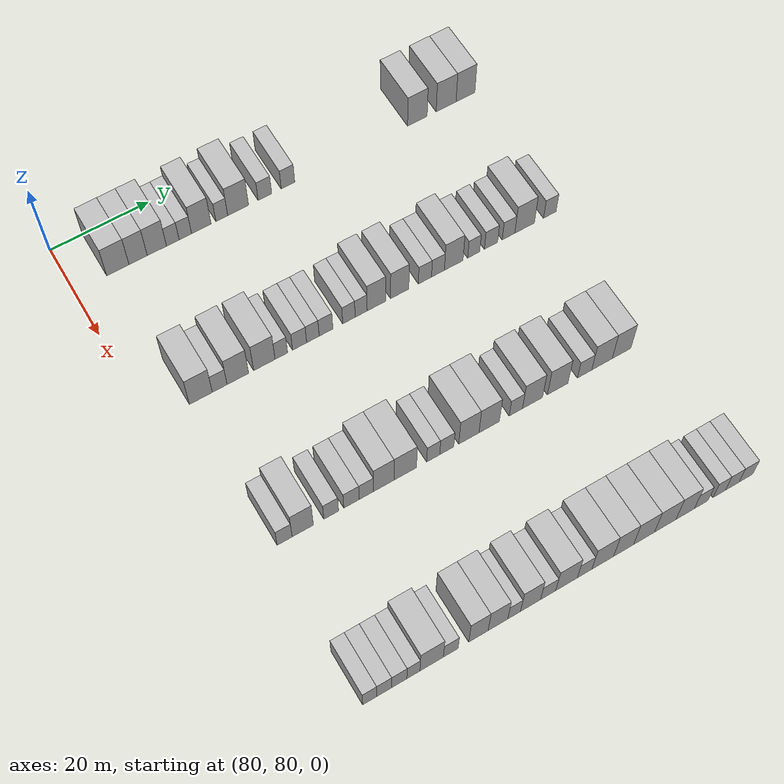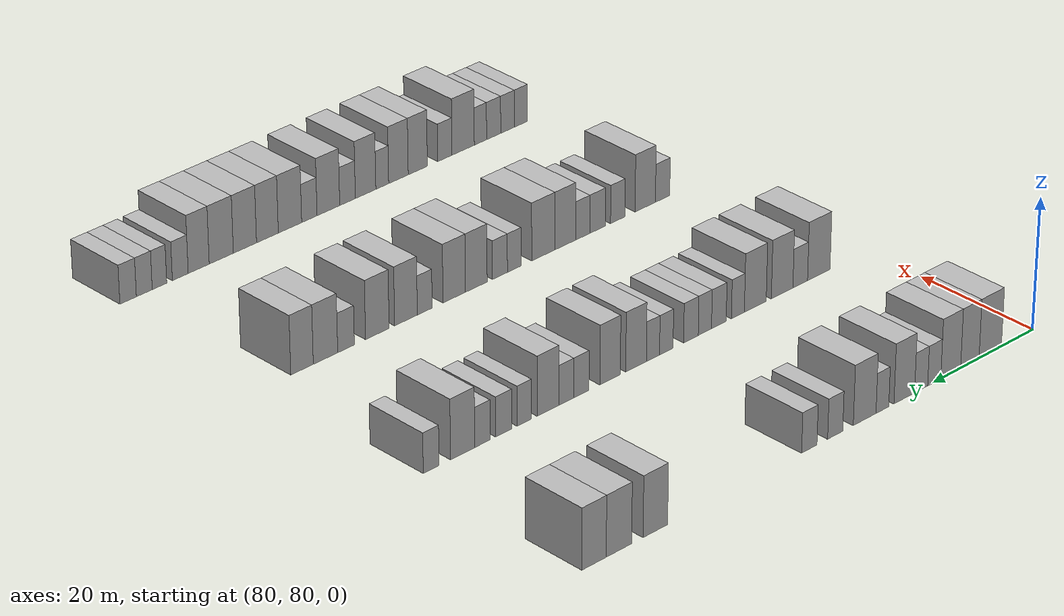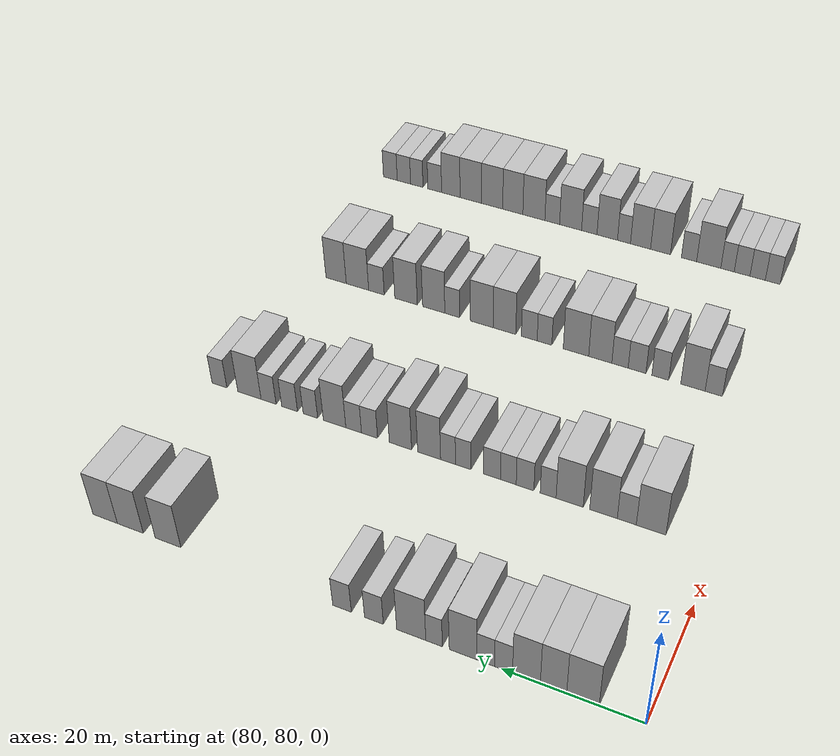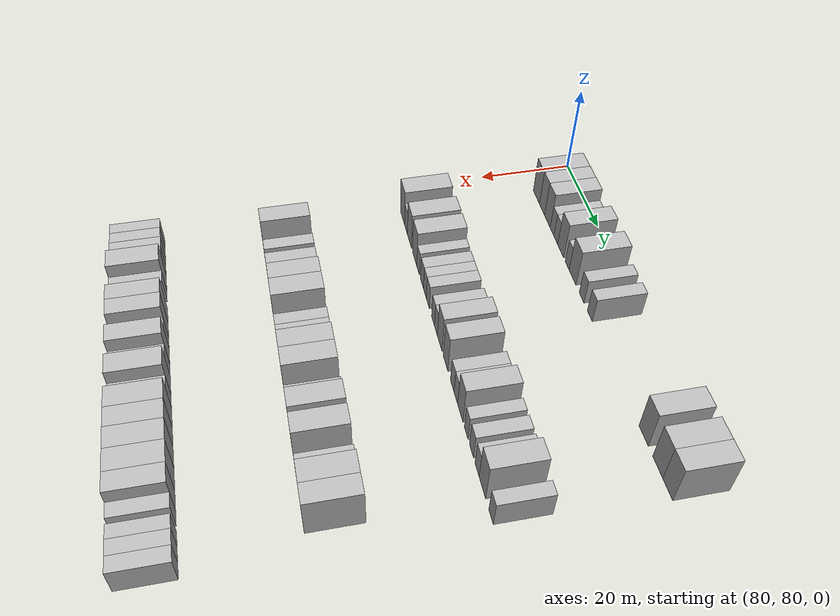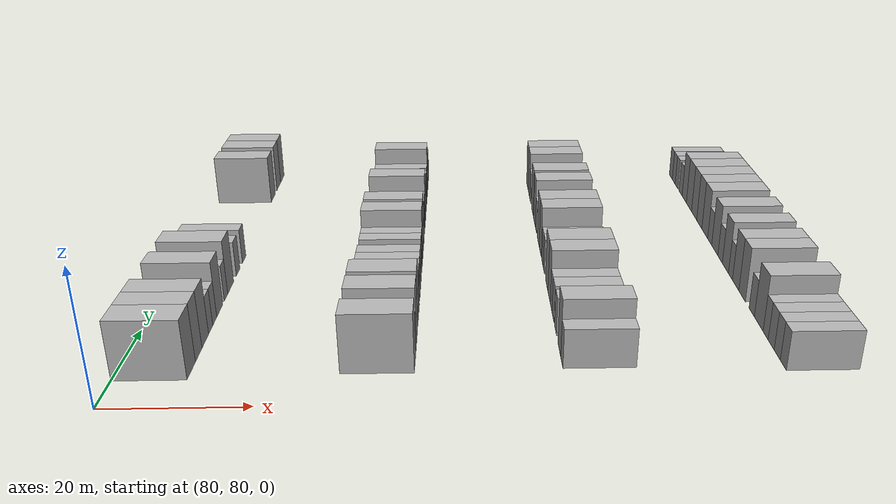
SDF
<sdf version="1.6">
 <world name="default">
  <model name="building_593">
   <static>1</static>
   <pose>85.0000 88.6629 0 0.000000 0.000000 0.000000</pose>
   <link name="link">
    <pose>0 0 4.50 0 0 0</pose>
    <collision name="collision"><geometry><box><size>10.0000 4.4627 9.0000</size></box></geometry></collision>
    <visual name="visual">
     <cast_shadows>0</cast_shadows>
     <geometry><box><size>10.0000 4.4627 9.0000</size></box></geometry>
     <material>
      <script>
       <uri>model://HANNAS_wall/materials/scripts</uri>
       <uri>model://HANNAS_wall/materials/textures</uri>
       <name>vrc/HANNAS_wall</name>
      </script>
     </material>
    </visual>
   </link>
  </model>
  <model name="building_594">
   <static>1</static>
   <pose>85.0000 92.7208 0 0.000000 0.000000 0.000000</pose>
   <link name="link">
    <pose>0 0 4.50 0 0 0</pose>
    <collision name="collision"><geometry><box><size>10.0000 3.6532 9.0000</size></box></geometry></collision>
    <visual name="visual">
     <cast_shadows>0</cast_shadows>
     <geometry><box><size>10.0000 3.6532 9.0000</size></box></geometry>
     <material>
      <script>
       <uri>model://HANNAS_wall/materials/scripts</uri>
       <uri>model://HANNAS_wall/materials/textures</uri>
       <name>vrc/HANNAS_wall</name>
      </script>
     </material>
    </visual>
   </link>
  </model>
  <model name="building_595">
   <static>1</static>
   <pose>85.0000 96.4983 0 0.000000 0.000000 0.000000</pose>
   <link name="link">
    <pose>0 0 4.50 0 0 0</pose>
    <collision name="collision"><geometry><box><size>10.0000 3.9016 9.0000</size></box></geometry></collision>
    <visual name="visual">
     <cast_shadows>0</cast_shadows>
     <geometry><box><size>10.0000 3.9016 9.0000</size></box></geometry>
     <material>
      <script>
       <uri>model://HANNAS_wall/materials/scripts</uri>
       <uri>model://HANNAS_wall/materials/textures</uri>
       <name>vrc/HANNAS_wall</name>
      </script>
     </material>
    </visual>
   </link>
  </model>
  <model name="building_596">
   <static>1</static>
   <pose>85.0000 99.7285 0 0.000000 0.000000 0.000000</pose>
   <link name="link">
    <pose>0 0 3.00 0 0 0</pose>
    <collision name="collision"><geometry><box><size>10.0000 2.5588 6.0000</size></box></geometry></collision>
    <visual name="visual">
     <cast_shadows>0</cast_shadows>
     <geometry><box><size>10.0000 2.5588 6.0000</size></box></geometry>
     <material>
      <script>
       <uri>model://HANNAS_wall/materials/scripts</uri>
       <uri>model://HANNAS_wall/materials/textures</uri>
       <name>vrc/HANNAS_wall</name>
      </script>
     </material>
    </visual>
   </link>
  </model>
  <model name="building_597">
   <static>1</static>
   <pose>85.0000 102.2807 0 0.000000 0.000000 0.000000</pose>
   <link name="link">
    <pose>0 0 3.00 0 0 0</pose>
    <collision name="collision"><geometry><box><size>10.0000 2.5457 6.0000</size></box></geometry></collision>
    <visual name="visual">
     <cast_shadows>0</cast_shadows>
     <geometry><box><size>10.0000 2.5457 6.0000</size></box></geometry>
     <material>
      <script>
       <uri>model://HANNAS_wall/materials/scripts</uri>
       <uri>model://HANNAS_wall/materials/textures</uri>
       <name>vrc/HANNAS_wall</name>
      </script>
     </material>
    </visual>
   </link>
  </model>
  <model name="building_598">
   <static>1</static>
   <pose>85.0000 105.5483 0 0.000000 0.000000 0.000000</pose>
   <link name="link">
    <pose>0 0 4.50 0 0 0</pose>
    <collision name="collision"><geometry><box><size>10.0000 3.9896 9.0000</size></box></geometry></collision>
    <visual name="visual">
     <cast_shadows>0</cast_shadows>
     <geometry><box><size>10.0000 3.9896 9.0000</size></box></geometry>
     <material>
      <script>
       <uri>model://HANNAS_wall/materials/scripts</uri>
       <uri>model://HANNAS_wall/materials/textures</uri>
       <name>vrc/HANNAS_wall</name>
      </script>
     </material>
    </visual>
   </link>
  </model>
  <model name="building_599">
   <static>1</static>
   <pose>85.0000 109.7626 0 0.000000 0.000000 0.000000</pose>
   <link name="link">
    <pose>0 0 3.00 0 0 0</pose>
    <collision name="collision"><geometry><box><size>10.0000 2.4389 6.0000</size></box></geometry></collision>
    <visual name="visual">
     <cast_shadows>0</cast_shadows>
     <geometry><box><size>10.0000 2.4389 6.0000</size></box></geometry>
     <material>
      <script>
       <uri>model://HANNAS_wall/materials/scripts</uri>
       <uri>model://HANNAS_wall/materials/textures</uri>
       <name>vrc/HANNAS_wall</name>
      </script>
     </material>
    </visual>
   </link>
  </model>
  <model name="building_600">
   <static>1</static>
   <pose>85.0000 113.1440 0 0.000000 0.000000 0.000000</pose>
   <link name="link">
    <pose>0 0 4.50 0 0 0</pose>
    <collision name="collision"><geometry><box><size>10.0000 4.3240 9.0000</size></box></geometry></collision>
    <visual name="visual">
     <cast_shadows>0</cast_shadows>
     <geometry><box><size>10.0000 4.3240 9.0000</size></box></geometry>
     <material>
      <script>
       <uri>model://HANNAS_wall/materials/scripts</uri>
       <uri>model://HANNAS_wall/materials/textures</uri>
       <name>vrc/HANNAS_wall</name>
      </script>
     </material>
    </visual>
   </link>
  </model>
  <model name="building_601">
   <static>1</static>
   <pose>85.0000 118.7270 0 0.000000 0.000000 0.000000</pose>
   <link name="link">
    <pose>0 0 3.00 0 0 0</pose>
    <collision name="collision"><geometry><box><size>10.0000 2.8420 6.0000</size></box></geometry></collision>
    <visual name="visual">
     <cast_shadows>0</cast_shadows>
     <geometry><box><size>10.0000 2.8420 6.0000</size></box></geometry>
     <material>
      <script>
       <uri>model://HANNAS_wall/materials/scripts</uri>
       <uri>model://HANNAS_wall/materials/textures</uri>
       <name>vrc/HANNAS_wall</name>
      </script>
     </material>
    </visual>
   </link>
  </model>
  <model name="building_602">
   <static>1</static>
   <pose>85.0000 123.5786 0 0.000000 0.000000 0.000000</pose>
   <link name="link">
    <pose>0 0 3.00 0 0 0</pose>
    <collision name="collision"><geometry><box><size>10.0000 2.8612 6.0000</size></box></geometry></collision>
    <visual name="visual">
     <cast_shadows>0</cast_shadows>
     <geometry><box><size>10.0000 2.8612 6.0000</size></box></geometry>
     <material>
      <script>
       <uri>model://HANNAS_wall/materials/scripts</uri>
       <uri>model://HANNAS_wall/materials/textures</uri>
       <name>vrc/HANNAS_wall</name>
      </script>
     </material>
    </visual>
   </link>
  </model>
  <model name="building_603">
   <static>1</static>
   <pose>85.0000 151.4827 0 0.000000 0.000000 0.000000</pose>
   <link name="link">
    <pose>0 0 4.50 0 0 0</pose>
    <collision name="collision"><geometry><box><size>10.0000 4.3156 9.0000</size></box></geometry></collision>
    <visual name="visual">
     <cast_shadows>0</cast_shadows>
     <geometry><box><size>10.0000 4.3156 9.0000</size></box></geometry>
     <material>
      <script>
       <uri>model://HANNAS_wall/materials/scripts</uri>
       <uri>model://HANNAS_wall/materials/textures</uri>
       <name>vrc/HANNAS_wall</name>
      </script>
     </material>
    </visual>
   </link>
  </model>
  <model name="building_604">
   <static>1</static>
   <pose>85.0000 157.8528 0 0.000000 0.000000 0.000000</pose>
   <link name="link">
    <pose>0 0 4.50 0 0 0</pose>
    <collision name="collision"><geometry><box><size>10.0000 4.4247 9.0000</size></box></geometry></collision>
    <visual name="visual">
     <cast_shadows>0</cast_shadows>
     <geometry><box><size>10.0000 4.4247 9.0000</size></box></geometry>
     <material>
      <script>
       <uri>model://HANNAS_wall/materials/scripts</uri>
       <uri>model://HANNAS_wall/materials/textures</uri>
       <name>vrc/HANNAS_wall</name>
      </script>
     </material>
    </visual>
   </link>
  </model>
  <model name="building_605">
   <static>1</static>
   <pose>85.0000 162.1666 0 0.000000 0.000000 0.000000</pose>
   <link name="link">
    <pose>0 0 4.50 0 0 0</pose>
    <collision name="collision"><geometry><box><size>10.0000 4.2029 9.0000</size></box></geometry></collision>
    <visual name="visual">
     <cast_shadows>0</cast_shadows>
     <geometry><box><size>10.0000 4.2029 9.0000</size></box></geometry>
     <material>
      <script>
       <uri>model://HANNAS_wall/materials/scripts</uri>
       <uri>model://HANNAS_wall/materials/textures</uri>
       <name>vrc/HANNAS_wall</name>
      </script>
     </material>
    </visual>
   </link>
  </model>
  <model name="building_805">
   <static>1</static>
   <pose>115.0000 89.6405 0 0.000000 0.000000 0.000000</pose>
   <link name="link">
    <pose>0 0 4.50 0 0 0</pose>
    <collision name="collision"><geometry><box><size>10.0000 4.4623 9.0000</size></box></geometry></collision>
    <visual name="visual">
     <cast_shadows>0</cast_shadows>
     <geometry><box><size>10.0000 4.4623 9.0000</size></box></geometry>
     <material>
      <script>
       <uri>model://HANNAS_wall/materials/scripts</uri>
       <uri>model://HANNAS_wall/materials/textures</uri>
       <name>vrc/HANNAS_wall</name>
      </script>
     </material>
    </visual>
   </link>
  </model>
  <model name="building_806">
   <static>1</static>
   <pose>115.0000 93.3172 0 0.000000 0.000000 0.000000</pose>
   <link name="link">
    <pose>0 0 3.00 0 0 0</pose>
    <collision name="collision"><geometry><box><size>10.0000 2.8911 6.0000</size></box></geometry></collision>
    <visual name="visual">
     <cast_shadows>0</cast_shadows>
     <geometry><box><size>10.0000 2.8911 6.0000</size></box></geometry>
     <material>
      <script>
       <uri>model://HANNAS_wall/materials/scripts</uri>
       <uri>model://HANNAS_wall/materials/textures</uri>
       <name>vrc/HANNAS_wall</name>
      </script>
     </material>
    </visual>
   </link>
  </model>
  <model name="building_807">
   <static>1</static>
   <pose>115.0000 96.8798 0 0.000000 0.000000 0.000000</pose>
   <link name="link">
    <pose>0 0 4.50 0 0 0</pose>
    <collision name="collision"><geometry><box><size>10.0000 4.2341 9.0000</size></box></geometry></collision>
    <visual name="visual">
     <cast_shadows>0</cast_shadows>
     <geometry><box><size>10.0000 4.2341 9.0000</size></box></geometry>
     <material>
      <script>
       <uri>model://HANNAS_wall/materials/scripts</uri>
       <uri>model://HANNAS_wall/materials/textures</uri>
       <name>vrc/HANNAS_wall</name>
      </script>
     </material>
    </visual>
   </link>
  </model>
  <model name="building_808">
   <static>1</static>
   <pose>115.0000 102.1178 0 0.000000 0.000000 0.000000</pose>
   <link name="link">
    <pose>0 0 4.50 0 0 0</pose>
    <collision name="collision"><geometry><box><size>10.0000 4.2420 9.0000</size></box></geometry></collision>
    <visual name="visual">
     <cast_shadows>0</cast_shadows>
     <geometry><box><size>10.0000 4.2420 9.0000</size></box></geometry>
     <material>
      <script>
       <uri>model://HANNAS_wall/materials/scripts</uri>
       <uri>model://HANNAS_wall/materials/textures</uri>
       <name>vrc/HANNAS_wall</name>
      </script>
     </material>
    </visual>
   </link>
  </model>
  <model name="building_809">
   <static>1</static>
   <pose>115.0000 105.4895 0 0.000000 0.000000 0.000000</pose>
   <link name="link">
    <pose>0 0 3.00 0 0 0</pose>
    <collision name="collision"><geometry><box><size>10.0000 2.5015 6.0000</size></box></geometry></collision>
    <visual name="visual">
     <cast_shadows>0</cast_shadows>
     <geometry><box><size>10.0000 2.5015 6.0000</size></box></geometry>
     <material>
      <script>
       <uri>model://HANNAS_wall/materials/scripts</uri>
       <uri>model://HANNAS_wall/materials/textures</uri>
       <name>vrc/HANNAS_wall</name>
      </script>
     </material>
    </visual>
   </link>
  </model>
  <model name="building_810">
   <static>1</static>
   <pose>115.0000 109.1490 0 0.000000 0.000000 0.000000</pose>
   <link name="link">
    <pose>0 0 3.00 0 0 0</pose>
    <collision name="collision"><geometry><box><size>10.0000 2.8173 6.0000</size></box></geometry></collision>
    <visual name="visual">
     <cast_shadows>0</cast_shadows>
     <geometry><box><size>10.0000 2.8173 6.0000</size></box></geometry>
     <material>
      <script>
       <uri>model://HANNAS_wall/materials/scripts</uri>
       <uri>model://HANNAS_wall/materials/textures</uri>
       <name>vrc/HANNAS_wall</name>
      </script>
     </material>
    </visual>
   </link>
  </model>
  <model name="building_811">
   <static>1</static>
   <pose>115.0000 111.8205 0 0.000000 0.000000 0.000000</pose>
   <link name="link">
    <pose>0 0 3.00 0 0 0</pose>
    <collision name="collision"><geometry><box><size>10.0000 2.5257 6.0000</size></box></geometry></collision>
    <visual name="visual">
     <cast_shadows>0</cast_shadows>
     <geometry><box><size>10.0000 2.5257 6.0000</size></box></geometry>
     <material>
      <script>
       <uri>model://HANNAS_wall/materials/scripts</uri>
       <uri>model://HANNAS_wall/materials/textures</uri>
       <name>vrc/HANNAS_wall</name>
      </script>
     </material>
    </visual>
   </link>
  </model>
  <model name="building_812">
   <static>1</static>
   <pose>115.0000 114.4711 0 0.000000 0.000000 0.000000</pose>
   <link name="link">
    <pose>0 0 3.00 0 0 0</pose>
    <collision name="collision"><geometry><box><size>10.0000 2.7755 6.0000</size></box></geometry></collision>
    <visual name="visual">
     <cast_shadows>0</cast_shadows>
     <geometry><box><size>10.0000 2.7755 6.0000</size></box></geometry>
     <material>
      <script>
       <uri>model://HANNAS_wall/materials/scripts</uri>
       <uri>model://HANNAS_wall/materials/textures</uri>
       <name>vrc/HANNAS_wall</name>
      </script>
     </material>
    </visual>
   </link>
  </model>
  <model name="building_813">
   <static>1</static>
   <pose>115.0000 119.1285 0 0.000000 0.000000 0.000000</pose>
   <link name="link">
    <pose>0 0 3.00 0 0 0</pose>
    <collision name="collision"><geometry><box><size>10.0000 2.5393 6.0000</size></box></geometry></collision>
    <visual name="visual">
     <cast_shadows>0</cast_shadows>
     <geometry><box><size>10.0000 2.5393 6.0000</size></box></geometry>
     <material>
      <script>
       <uri>model://HANNAS_wall/materials/scripts</uri>
       <uri>model://HANNAS_wall/materials/textures</uri>
       <name>vrc/HANNAS_wall</name>
      </script>
     </material>
    </visual>
   </link>
  </model>
  <model name="building_814">
   <static>1</static>
   <pose>115.0000 121.6326 0 0.000000 0.000000 0.000000</pose>
   <link name="link">
    <pose>0 0 3.00 0 0 0</pose>
    <collision name="collision"><geometry><box><size>10.0000 2.4688 6.0000</size></box></geometry></collision>
    <visual name="visual">
     <cast_shadows>0</cast_shadows>
     <geometry><box><size>10.0000 2.4688 6.0000</size></box></geometry>
     <material>
      <script>
       <uri>model://HANNAS_wall/materials/scripts</uri>
       <uri>model://HANNAS_wall/materials/textures</uri>
       <name>vrc/HANNAS_wall</name>
      </script>
     </material>
    </visual>
   </link>
  </model>
  <model name="building_815">
   <static>1</static>
   <pose>115.0000 124.7837 0 0.000000 0.000000 0.000000</pose>
   <link name="link">
    <pose>0 0 4.50 0 0 0</pose>
    <collision name="collision"><geometry><box><size>10.0000 3.8334 9.0000</size></box></geometry></collision>
    <visual name="visual">
     <cast_shadows>0</cast_shadows>
     <geometry><box><size>10.0000 3.8334 9.0000</size></box></geometry>
     <material>
      <script>
       <uri>model://HANNAS_wall/materials/scripts</uri>
       <uri>model://HANNAS_wall/materials/textures</uri>
       <name>vrc/HANNAS_wall</name>
      </script>
     </material>
    </visual>
   </link>
  </model>
  <model name="building_816">
   <static>1</static>
   <pose>115.0000 129.5883 0 0.000000 0.000000 0.000000</pose>
   <link name="link">
    <pose>0 0 4.50 0 0 0</pose>
    <collision name="collision"><geometry><box><size>10.0000 3.7759 9.0000</size></box></geometry></collision>
    <visual name="visual">
     <cast_shadows>0</cast_shadows>
     <geometry><box><size>10.0000 3.7759 9.0000</size></box></geometry>
     <material>
      <script>
       <uri>model://HANNAS_wall/materials/scripts</uri>
       <uri>model://HANNAS_wall/materials/textures</uri>
       <name>vrc/HANNAS_wall</name>
      </script>
     </material>
    </visual>
   </link>
  </model>
  <model name="building_817">
   <static>1</static>
   <pose>115.0000 134.8515 0 0.000000 0.000000 0.000000</pose>
   <link name="link">
    <pose>0 0 3.00 0 0 0</pose>
    <collision name="collision"><geometry><box><size>10.0000 2.7505 6.0000</size></box></geometry></collision>
    <visual name="visual">
     <cast_shadows>0</cast_shadows>
     <geometry><box><size>10.0000 2.7505 6.0000</size></box></geometry>
     <material>
      <script>
       <uri>model://HANNAS_wall/materials/scripts</uri>
       <uri>model://HANNAS_wall/materials/textures</uri>
       <name>vrc/HANNAS_wall</name>
      </script>
     </material>
    </visual>
   </link>
  </model>
  <model name="building_818">
   <static>1</static>
   <pose>115.0000 137.5805 0 0.000000 0.000000 0.000000</pose>
   <link name="link">
    <pose>0 0 3.00 0 0 0</pose>
    <collision name="collision"><geometry><box><size>10.0000 2.7075 6.0000</size></box></geometry></collision>
    <visual name="visual">
     <cast_shadows>0</cast_shadows>
     <geometry><box><size>10.0000 2.7075 6.0000</size></box></geometry>
     <material>
      <script>
       <uri>model://HANNAS_wall/materials/scripts</uri>
       <uri>model://HANNAS_wall/materials/textures</uri>
       <name>vrc/HANNAS_wall</name>
      </script>
     </material>
    </visual>
   </link>
  </model>
  <model name="building_819">
   <static>1</static>
   <pose>115.0000 140.8945 0 0.000000 0.000000 0.000000</pose>
   <link name="link">
    <pose>0 0 4.50 0 0 0</pose>
    <collision name="collision"><geometry><box><size>10.0000 3.9205 9.0000</size></box></geometry></collision>
    <visual name="visual">
     <cast_shadows>0</cast_shadows>
     <geometry><box><size>10.0000 3.9205 9.0000</size></box></geometry>
     <material>
      <script>
       <uri>model://HANNAS_wall/materials/scripts</uri>
       <uri>model://HANNAS_wall/materials/textures</uri>
       <name>vrc/HANNAS_wall</name>
      </script>
     </material>
    </visual>
   </link>
  </model>
  <model name="building_820">
   <static>1</static>
   <pose>115.0000 145.1359 0 0.000000 0.000000 0.000000</pose>
   <link name="link">
    <pose>0 0 3.00 0 0 0</pose>
    <collision name="collision"><geometry><box><size>10.0000 2.5624 6.0000</size></box></geometry></collision>
    <visual name="visual">
     <cast_shadows>0</cast_shadows>
     <geometry><box><size>10.0000 2.5624 6.0000</size></box></geometry>
     <material>
      <script>
       <uri>model://HANNAS_wall/materials/scripts</uri>
       <uri>model://HANNAS_wall/materials/textures</uri>
       <name>vrc/HANNAS_wall</name>
      </script>
     </material>
    </visual>
   </link>
  </model>
  <model name="building_821">
   <static>1</static>
   <pose>115.0000 148.8288 0 0.000000 0.000000 0.000000</pose>
   <link name="link">
    <pose>0 0 3.00 0 0 0</pose>
    <collision name="collision"><geometry><box><size>10.0000 2.8233 6.0000</size></box></geometry></collision>
    <visual name="visual">
     <cast_shadows>0</cast_shadows>
     <geometry><box><size>10.0000 2.8233 6.0000</size></box></geometry>
     <material>
      <script>
       <uri>model://HANNAS_wall/materials/scripts</uri>
       <uri>model://HANNAS_wall/materials/textures</uri>
       <name>vrc/HANNAS_wall</name>
      </script>
     </material>
    </visual>
   </link>
  </model>
  <model name="building_822">
   <static>1</static>
   <pose>115.0000 152.5946 0 0.000000 0.000000 0.000000</pose>
   <link name="link">
    <pose>0 0 3.00 0 0 0</pose>
    <collision name="collision"><geometry><box><size>10.0000 2.7085 6.0000</size></box></geometry></collision>
    <visual name="visual">
     <cast_shadows>0</cast_shadows>
     <geometry><box><size>10.0000 2.7085 6.0000</size></box></geometry>
     <material>
      <script>
       <uri>model://HANNAS_wall/materials/scripts</uri>
       <uri>model://HANNAS_wall/materials/textures</uri>
       <name>vrc/HANNAS_wall</name>
      </script>
     </material>
    </visual>
   </link>
  </model>
  <model name="building_823">
   <static>1</static>
   <pose>115.0000 156.0665 0 0.000000 0.000000 0.000000</pose>
   <link name="link">
    <pose>0 0 4.50 0 0 0</pose>
    <collision name="collision"><geometry><box><size>10.0000 4.2352 9.0000</size></box></geometry></collision>
    <visual name="visual">
     <cast_shadows>0</cast_shadows>
     <geometry><box><size>10.0000 4.2352 9.0000</size></box></geometry>
     <material>
      <script>
       <uri>model://HANNAS_wall/materials/scripts</uri>
       <uri>model://HANNAS_wall/materials/textures</uri>
       <name>vrc/HANNAS_wall</name>
      </script>
     </material>
    </visual>
   </link>
  </model>
  <model name="building_824">
   <static>1</static>
   <pose>115.0000 161.5474 0 0.000000 0.000000 0.000000</pose>
   <link name="link">
    <pose>0 0 3.00 0 0 0</pose>
    <collision name="collision"><geometry><box><size>10.0000 2.7266 6.0000</size></box></geometry></collision>
    <visual name="visual">
     <cast_shadows>0</cast_shadows>
     <geometry><box><size>10.0000 2.7266 6.0000</size></box></geometry>
     <material>
      <script>
       <uri>model://HANNAS_wall/materials/scripts</uri>
       <uri>model://HANNAS_wall/materials/textures</uri>
       <name>vrc/HANNAS_wall</name>
      </script>
     </material>
    </visual>
   </link>
  </model>
  <model name="building_1025">
   <static>1</static>
   <pose>145.0000 89.4392 0 0.000000 0.000000 0.000000</pose>
   <link name="link">
    <pose>0 0 3.00 0 0 0</pose>
    <collision name="collision"><geometry><box><size>10.0000 2.8371 6.0000</size></box></geometry></collision>
    <visual name="visual">
     <cast_shadows>0</cast_shadows>
     <geometry><box><size>10.0000 2.8371 6.0000</size></box></geometry>
     <material>
      <script>
       <uri>model://HANNAS_wall/materials/scripts</uri>
       <uri>model://HANNAS_wall/materials/textures</uri>
       <name>vrc/HANNAS_wall</name>
      </script>
     </material>
    </visual>
   </link>
  </model>
  <model name="building_1026">
   <static>1</static>
   <pose>145.0000 92.8679 0 0.000000 0.000000 0.000000</pose>
   <link name="link">
    <pose>0 0 4.50 0 0 0</pose>
    <collision name="collision"><geometry><box><size>10.0000 4.0204 9.0000</size></box></geometry></collision>
    <visual name="visual">
     <cast_shadows>0</cast_shadows>
     <geometry><box><size>10.0000 4.0204 9.0000</size></box></geometry>
     <material>
      <script>
       <uri>model://HANNAS_wall/materials/scripts</uri>
       <uri>model://HANNAS_wall/materials/textures</uri>
       <name>vrc/HANNAS_wall</name>
      </script>
     </material>
    </visual>
   </link>
  </model>
  <model name="building_1027">
   <static>1</static>
   <pose>145.0000 98.2884 0 0.000000 0.000000 0.000000</pose>
   <link name="link">
    <pose>0 0 3.00 0 0 0</pose>
    <collision name="collision"><geometry><box><size>10.0000 2.8205 6.0000</size></box></geometry></collision>
    <visual name="visual">
     <cast_shadows>0</cast_shadows>
     <geometry><box><size>10.0000 2.8205 6.0000</size></box></geometry>
     <material>
      <script>
       <uri>model://HANNAS_wall/materials/scripts</uri>
       <uri>model://HANNAS_wall/materials/textures</uri>
       <name>vrc/HANNAS_wall</name>
      </script>
     </material>
    </visual>
   </link>
  </model>
  <model name="building_1028">
   <static>1</static>
   <pose>145.0000 102.1970 0 0.000000 0.000000 0.000000</pose>
   <link name="link">
    <pose>0 0 3.00 0 0 0</pose>
    <collision name="collision"><geometry><box><size>10.0000 2.9966 6.0000</size></box></geometry></collision>
    <visual name="visual">
     <cast_shadows>0</cast_shadows>
     <geometry><box><size>10.0000 2.9966 6.0000</size></box></geometry>
     <material>
      <script>
       <uri>model://HANNAS_wall/materials/scripts</uri>
       <uri>model://HANNAS_wall/materials/textures</uri>
       <name>vrc/HANNAS_wall</name>
      </script>
     </material>
    </visual>
   </link>
  </model>
  <model name="building_1029">
   <static>1</static>
   <pose>145.0000 105.0833 0 0.000000 0.000000 0.000000</pose>
   <link name="link">
    <pose>0 0 3.00 0 0 0</pose>
    <collision name="collision"><geometry><box><size>10.0000 2.7762 6.0000</size></box></geometry></collision>
    <visual name="visual">
     <cast_shadows>0</cast_shadows>
     <geometry><box><size>10.0000 2.7762 6.0000</size></box></geometry>
     <material>
      <script>
       <uri>model://HANNAS_wall/materials/scripts</uri>
       <uri>model://HANNAS_wall/materials/textures</uri>
       <name>vrc/HANNAS_wall</name>
      </script>
     </material>
    </visual>
   </link>
  </model>
  <model name="building_1030">
   <static>1</static>
   <pose>145.0000 108.4611 0 0.000000 0.000000 0.000000</pose>
   <link name="link">
    <pose>0 0 4.50 0 0 0</pose>
    <collision name="collision"><geometry><box><size>10.0000 3.9794 9.0000</size></box></geometry></collision>
    <visual name="visual">
     <cast_shadows>0</cast_shadows>
     <geometry><box><size>10.0000 3.9794 9.0000</size></box></geometry>
     <material>
      <script>
       <uri>model://HANNAS_wall/materials/scripts</uri>
       <uri>model://HANNAS_wall/materials/textures</uri>
       <name>vrc/HANNAS_wall</name>
      </script>
     </material>
    </visual>
   </link>
  </model>
  <model name="building_1031">
   <static>1</static>
   <pose>145.0000 112.6602 0 0.000000 0.000000 0.000000</pose>
   <link name="link">
    <pose>0 0 4.50 0 0 0</pose>
    <collision name="collision"><geometry><box><size>10.0000 4.4187 9.0000</size></box></geometry></collision>
    <visual name="visual">
     <cast_shadows>0</cast_shadows>
     <geometry><box><size>10.0000 4.4187 9.0000</size></box></geometry>
     <material>
      <script>
       <uri>model://HANNAS_wall/materials/scripts</uri>
       <uri>model://HANNAS_wall/materials/textures</uri>
       <name>vrc/HANNAS_wall</name>
      </script>
     </material>
    </visual>
   </link>
  </model>
  <model name="building_1032">
   <static>1</static>
   <pose>145.0000 118.1655 0 0.000000 0.000000 0.000000</pose>
   <link name="link">
    <pose>0 0 3.00 0 0 0</pose>
    <collision name="collision"><geometry><box><size>10.0000 2.5919 6.0000</size></box></geometry></collision>
    <visual name="visual">
     <cast_shadows>0</cast_shadows>
     <geometry><box><size>10.0000 2.5919 6.0000</size></box></geometry>
     <material>
      <script>
       <uri>model://HANNAS_wall/materials/scripts</uri>
       <uri>model://HANNAS_wall/materials/textures</uri>
       <name>vrc/HANNAS_wall</name>
      </script>
     </material>
    </visual>
   </link>
  </model>
  <model name="building_1033">
   <static>1</static>
   <pose>145.0000 120.8596 0 0.000000 0.000000 0.000000</pose>
   <link name="link">
    <pose>0 0 3.00 0 0 0</pose>
    <collision name="collision"><geometry><box><size>10.0000 2.7964 6.0000</size></box></geometry></collision>
    <visual name="visual">
     <cast_shadows>0</cast_shadows>
     <geometry><box><size>10.0000 2.7964 6.0000</size></box></geometry>
     <material>
      <script>
       <uri>model://HANNAS_wall/materials/scripts</uri>
       <uri>model://HANNAS_wall/materials/textures</uri>
       <name>vrc/HANNAS_wall</name>
      </script>
     </material>
    </visual>
   </link>
  </model>
  <model name="building_1034">
   <static>1</static>
   <pose>145.0000 125.2822 0 0.000000 0.000000 0.000000</pose>
   <link name="link">
    <pose>0 0 4.50 0 0 0</pose>
    <collision name="collision"><geometry><box><size>10.0000 4.0488 9.0000</size></box></geometry></collision>
    <visual name="visual">
     <cast_shadows>0</cast_shadows>
     <geometry><box><size>10.0000 4.0488 9.0000</size></box></geometry>
     <material>
      <script>
       <uri>model://HANNAS_wall/materials/scripts</uri>
       <uri>model://HANNAS_wall/materials/textures</uri>
       <name>vrc/HANNAS_wall</name>
      </script>
     </material>
    </visual>
   </link>
  </model>
  <model name="building_1035">
   <static>1</static>
   <pose>145.0000 129.3735 0 0.000000 0.000000 0.000000</pose>
   <link name="link">
    <pose>0 0 4.50 0 0 0</pose>
    <collision name="collision"><geometry><box><size>10.0000 4.1337 9.0000</size></box></geometry></collision>
    <visual name="visual">
     <cast_shadows>0</cast_shadows>
     <geometry><box><size>10.0000 4.1337 9.0000</size></box></geometry>
     <material>
      <script>
       <uri>model://HANNAS_wall/materials/scripts</uri>
       <uri>model://HANNAS_wall/materials/textures</uri>
       <name>vrc/HANNAS_wall</name>
      </script>
     </material>
    </visual>
   </link>
  </model>
  <model name="building_1036">
   <static>1</static>
   <pose>145.0000 134.7934 0 0.000000 0.000000 0.000000</pose>
   <link name="link">
    <pose>0 0 3.00 0 0 0</pose>
    <collision name="collision"><geometry><box><size>10.0000 2.7060 6.0000</size></box></geometry></collision>
    <visual name="visual">
     <cast_shadows>0</cast_shadows>
     <geometry><box><size>10.0000 2.7060 6.0000</size></box></geometry>
     <material>
      <script>
       <uri>model://HANNAS_wall/materials/scripts</uri>
       <uri>model://HANNAS_wall/materials/textures</uri>
       <name>vrc/HANNAS_wall</name>
      </script>
     </material>
    </visual>
   </link>
  </model>
  <model name="building_1037">
   <static>1</static>
   <pose>145.0000 138.2046 0 0.000000 0.000000 0.000000</pose>
   <link name="link">
    <pose>0 0 4.50 0 0 0</pose>
    <collision name="collision"><geometry><box><size>10.0000 4.1164 9.0000</size></box></geometry></collision>
    <visual name="visual">
     <cast_shadows>0</cast_shadows>
     <geometry><box><size>10.0000 4.1164 9.0000</size></box></geometry>
     <material>
      <script>
       <uri>model://HANNAS_wall/materials/scripts</uri>
       <uri>model://HANNAS_wall/materials/textures</uri>
       <name>vrc/HANNAS_wall</name>
      </script>
     </material>
    </visual>
   </link>
  </model>
  <model name="building_1038">
   <static>1</static>
   <pose>145.0000 143.3809 0 0.000000 0.000000 0.000000</pose>
   <link name="link">
    <pose>0 0 4.50 0 0 0</pose>
    <collision name="collision"><geometry><box><size>10.0000 4.2364 9.0000</size></box></geometry></collision>
    <visual name="visual">
     <cast_shadows>0</cast_shadows>
     <geometry><box><size>10.0000 4.2364 9.0000</size></box></geometry>
     <material>
      <script>
       <uri>model://HANNAS_wall/materials/scripts</uri>
       <uri>model://HANNAS_wall/materials/textures</uri>
       <name>vrc/HANNAS_wall</name>
      </script>
     </material>
    </visual>
   </link>
  </model>
  <model name="building_1039">
   <static>1</static>
   <pose>145.0000 148.9838 0 0.000000 0.000000 0.000000</pose>
   <link name="link">
    <pose>0 0 3.00 0 0 0</pose>
    <collision name="collision"><geometry><box><size>10.0000 2.9693 6.0000</size></box></geometry></collision>
    <visual name="visual">
     <cast_shadows>0</cast_shadows>
     <geometry><box><size>10.0000 2.9693 6.0000</size></box></geometry>
     <material>
      <script>
       <uri>model://HANNAS_wall/materials/scripts</uri>
       <uri>model://HANNAS_wall/materials/textures</uri>
       <name>vrc/HANNAS_wall</name>
      </script>
     </material>
    </visual>
   </link>
  </model>
  <model name="building_1040">
   <static>1</static>
   <pose>145.0000 152.6262 0 0.000000 0.000000 0.000000</pose>
   <link name="link">
    <pose>0 0 4.50 0 0 0</pose>
    <collision name="collision"><geometry><box><size>10.0000 4.3155 9.0000</size></box></geometry></collision>
    <visual name="visual">
     <cast_shadows>0</cast_shadows>
     <geometry><box><size>10.0000 4.3155 9.0000</size></box></geometry>
     <material>
      <script>
       <uri>model://HANNAS_wall/materials/scripts</uri>
       <uri>model://HANNAS_wall/materials/textures</uri>
       <name>vrc/HANNAS_wall</name>
      </script>
     </material>
    </visual>
   </link>
  </model>
  <model name="building_1041">
   <static>1</static>
   <pose>145.0000 156.7568 0 0.000000 0.000000 0.000000</pose>
   <link name="link">
    <pose>0 0 4.50 0 0 0</pose>
    <collision name="collision"><geometry><box><size>10.0000 3.9457 9.0000</size></box></geometry></collision>
    <visual name="visual">
     <cast_shadows>0</cast_shadows>
     <geometry><box><size>10.0000 3.9457 9.0000</size></box></geometry>
     <material>
      <script>
       <uri>model://HANNAS_wall/materials/scripts</uri>
       <uri>model://HANNAS_wall/materials/textures</uri>
       <name>vrc/HANNAS_wall</name>
      </script>
     </material>
    </visual>
   </link>
  </model>
  <model name="building_1260">
   <static>1</static>
   <pose>175.0000 88.0505 0 0.000000 0.000000 0.000000</pose>
   <link name="link">
    <pose>0 0 3.00 0 0 0</pose>
    <collision name="collision"><geometry><box><size>10.0000 2.6070 6.0000</size></box></geometry></collision>
    <visual name="visual">
     <cast_shadows>0</cast_shadows>
     <geometry><box><size>10.0000 2.6070 6.0000</size></box></geometry>
     <material>
      <script>
       <uri>model://HANNAS_wall/materials/scripts</uri>
       <uri>model://HANNAS_wall/materials/textures</uri>
       <name>vrc/HANNAS_wall</name>
      </script>
     </material>
    </visual>
   </link>
  </model>
  <model name="building_1261">
   <static>1</static>
   <pose>175.0000 90.7148 0 0.000000 0.000000 0.000000</pose>
   <link name="link">
    <pose>0 0 3.00 0 0 0</pose>
    <collision name="collision"><geometry><box><size>10.0000 2.7217 6.0000</size></box></geometry></collision>
    <visual name="visual">
     <cast_shadows>0</cast_shadows>
     <geometry><box><size>10.0000 2.7217 6.0000</size></box></geometry>
     <material>
      <script>
       <uri>model://HANNAS_wall/materials/scripts</uri>
       <uri>model://HANNAS_wall/materials/textures</uri>
       <name>vrc/HANNAS_wall</name>
      </script>
     </material>
    </visual>
   </link>
  </model>
  <model name="building_1262">
   <static>1</static>
   <pose>175.0000 93.4734 0 0.000000 0.000000 0.000000</pose>
   <link name="link">
    <pose>0 0 3.00 0 0 0</pose>
    <collision name="collision"><geometry><box><size>10.0000 2.7955 6.0000</size></box></geometry></collision>
    <visual name="visual">
     <cast_shadows>0</cast_shadows>
     <geometry><box><size>10.0000 2.7955 6.0000</size></box></geometry>
     <material>
      <script>
       <uri>model://HANNAS_wall/materials/scripts</uri>
       <uri>model://HANNAS_wall/materials/textures</uri>
       <name>vrc/HANNAS_wall</name>
      </script>
     </material>
    </visual>
   </link>
  </model>
  <model name="building_1263">
   <static>1</static>
   <pose>175.0000 96.0767 0 0.000000 0.000000 0.000000</pose>
   <link name="link">
    <pose>0 0 3.00 0 0 0</pose>
    <collision name="collision"><geometry><box><size>10.0000 2.4112 6.0000</size></box></geometry></collision>
    <visual name="visual">
     <cast_shadows>0</cast_shadows>
     <geometry><box><size>10.0000 2.4112 6.0000</size></box></geometry>
     <material>
      <script>
       <uri>model://HANNAS_wall/materials/scripts</uri>
       <uri>model://HANNAS_wall/materials/textures</uri>
       <name>vrc/HANNAS_wall</name>
      </script>
     </material>
    </visual>
   </link>
  </model>
  <model name="building_1264">
   <static>1</static>
   <pose>175.0000 99.4678 0 0.000000 0.000000 0.000000</pose>
   <link name="link">
    <pose>0 0 4.50 0 0 0</pose>
    <collision name="collision"><geometry><box><size>10.0000 4.3711 9.0000</size></box></geometry></collision>
    <visual name="visual">
     <cast_shadows>0</cast_shadows>
     <geometry><box><size>10.0000 4.3711 9.0000</size></box></geometry>
     <material>
      <script>
       <uri>model://HANNAS_wall/materials/scripts</uri>
       <uri>model://HANNAS_wall/materials/textures</uri>
       <name>vrc/HANNAS_wall</name>
      </script>
     </material>
    </visual>
   </link>
  </model>
  <model name="building_1265">
   <static>1</static>
   <pose>175.0000 103.0416 0 0.000000 0.000000 0.000000</pose>
   <link name="link">
    <pose>0 0 3.00 0 0 0</pose>
    <collision name="collision"><geometry><box><size>10.0000 2.7765 6.0000</size></box></geometry></collision>
    <visual name="visual">
     <cast_shadows>0</cast_shadows>
     <geometry><box><size>10.0000 2.7765 6.0000</size></box></geometry>
     <material>
      <script>
       <uri>model://HANNAS_wall/materials/scripts</uri>
       <uri>model://HANNAS_wall/materials/textures</uri>
       <name>vrc/HANNAS_wall</name>
      </script>
     </material>
    </visual>
   </link>
  </model>
  <model name="building_1266">
   <static>1</static>
   <pose>175.0000 108.2697 0 0.000000 0.000000 0.000000</pose>
   <link name="link">
    <pose>0 0 4.50 0 0 0</pose>
    <collision name="collision"><geometry><box><size>10.0000 3.6796 9.0000</size></box></geometry></collision>
    <visual name="visual">
     <cast_shadows>0</cast_shadows>
     <geometry><box><size>10.0000 3.6796 9.0000</size></box></geometry>
     <material>
      <script>
       <uri>model://HANNAS_wall/materials/scripts</uri>
       <uri>model://HANNAS_wall/materials/textures</uri>
       <name>vrc/HANNAS_wall</name>
      </script>
     </material>
    </visual>
   </link>
  </model>
  <model name="building_1267">
   <static>1</static>
   <pose>175.0000 111.9830 0 0.000000 0.000000 0.000000</pose>
   <link name="link">
    <pose>0 0 4.50 0 0 0</pose>
    <collision name="collision"><geometry><box><size>10.0000 3.7471 9.0000</size></box></geometry></collision>
    <visual name="visual">
     <cast_shadows>0</cast_shadows>
     <geometry><box><size>10.0000 3.7471 9.0000</size></box></geometry>
     <material>
      <script>
       <uri>model://HANNAS_wall/materials/scripts</uri>
       <uri>model://HANNAS_wall/materials/textures</uri>
       <name>vrc/HANNAS_wall</name>
      </script>
     </material>
    </visual>
   </link>
  </model>
  <model name="building_1268">
   <static>1</static>
   <pose>175.0000 115.0738 0 0.000000 0.000000 0.000000</pose>
   <link name="link">
    <pose>0 0 3.00 0 0 0</pose>
    <collision name="collision"><geometry><box><size>10.0000 2.4344 6.0000</size></box></geometry></collision>
    <visual name="visual">
     <cast_shadows>0</cast_shadows>
     <geometry><box><size>10.0000 2.4344 6.0000</size></box></geometry>
     <material>
      <script>
       <uri>model://HANNAS_wall/materials/scripts</uri>
       <uri>model://HANNAS_wall/materials/textures</uri>
       <name>vrc/HANNAS_wall</name>
      </script>
     </material>
    </visual>
   </link>
  </model>
  <model name="building_1269">
   <static>1</static>
   <pose>175.0000 118.2274 0 0.000000 0.000000 0.000000</pose>
   <link name="link">
    <pose>0 0 4.50 0 0 0</pose>
    <collision name="collision"><geometry><box><size>10.0000 3.8729 9.0000</size></box></geometry></collision>
    <visual name="visual">
     <cast_shadows>0</cast_shadows>
     <geometry><box><size>10.0000 3.8729 9.0000</size></box></geometry>
     <material>
      <script>
       <uri>model://HANNAS_wall/materials/scripts</uri>
       <uri>model://HANNAS_wall/materials/textures</uri>
       <name>vrc/HANNAS_wall</name>
      </script>
     </material>
    </visual>
   </link>
  </model>
  <model name="building_1270">
   <static>1</static>
   <pose>175.0000 121.6354 0 0.000000 0.000000 0.000000</pose>
   <link name="link">
    <pose>0 0 3.00 0 0 0</pose>
    <collision name="collision"><geometry><box><size>10.0000 2.9432 6.0000</size></box></geometry></collision>
    <visual name="visual">
     <cast_shadows>0</cast_shadows>
     <geometry><box><size>10.0000 2.9432 6.0000</size></box></geometry>
     <material>
      <script>
       <uri>model://HANNAS_wall/materials/scripts</uri>
       <uri>model://HANNAS_wall/materials/textures</uri>
       <name>vrc/HANNAS_wall</name>
      </script>
     </material>
    </visual>
   </link>
  </model>
  <model name="building_1271">
   <static>1</static>
   <pose>175.0000 125.2232 0 0.000000 0.000000 0.000000</pose>
   <link name="link">
    <pose>0 0 4.50 0 0 0</pose>
    <collision name="collision"><geometry><box><size>10.0000 4.2324 9.0000</size></box></geometry></collision>
    <visual name="visual">
     <cast_shadows>0</cast_shadows>
     <geometry><box><size>10.0000 4.2324 9.0000</size></box></geometry>
     <material>
      <script>
       <uri>model://HANNAS_wall/materials/scripts</uri>
       <uri>model://HANNAS_wall/materials/textures</uri>
       <name>vrc/HANNAS_wall</name>
      </script>
     </material>
    </visual>
   </link>
  </model>
  <model name="building_1272">
   <static>1</static>
   <pose>175.0000 128.7645 0 0.000000 0.000000 0.000000</pose>
   <link name="link">
    <pose>0 0 3.00 0 0 0</pose>
    <collision name="collision"><geometry><box><size>10.0000 2.8502 6.0000</size></box></geometry></collision>
    <visual name="visual">
     <cast_shadows>0</cast_shadows>
     <geometry><box><size>10.0000 2.8502 6.0000</size></box></geometry>
     <material>
      <script>
       <uri>model://HANNAS_wall/materials/scripts</uri>
       <uri>model://HANNAS_wall/materials/textures</uri>
       <name>vrc/HANNAS_wall</name>
      </script>
     </material>
    </visual>
   </link>
  </model>
  <model name="building_1273">
   <static>1</static>
   <pose>175.0000 132.3439 0 0.000000 0.000000 0.000000</pose>
   <link name="link">
    <pose>0 0 4.50 0 0 0</pose>
    <collision name="collision"><geometry><box><size>10.0000 4.3087 9.0000</size></box></geometry></collision>
    <visual name="visual">
     <cast_shadows>0</cast_shadows>
     <geometry><box><size>10.0000 4.3087 9.0000</size></box></geometry>
     <material>
      <script>
       <uri>model://HANNAS_wall/materials/scripts</uri>
       <uri>model://HANNAS_wall/materials/textures</uri>
       <name>vrc/HANNAS_wall</name>
      </script>
     </material>
    </visual>
   </link>
  </model>
  <model name="building_1274">
   <static>1</static>
   <pose>175.0000 136.4896 0 0.000000 0.000000 0.000000</pose>
   <link name="link">
    <pose>0 0 4.50 0 0 0</pose>
    <collision name="collision"><geometry><box><size>10.0000 3.9827 9.0000</size></box></geometry></collision>
    <visual name="visual">
     <cast_shadows>0</cast_shadows>
     <geometry><box><size>10.0000 3.9827 9.0000</size></box></geometry>
     <material>
      <script>
       <uri>model://HANNAS_wall/materials/scripts</uri>
       <uri>model://HANNAS_wall/materials/textures</uri>
       <name>vrc/HANNAS_wall</name>
      </script>
     </material>
    </visual>
   </link>
  </model>
  <model name="building_1275">
   <static>1</static>
   <pose>175.0000 140.5826 0 0.000000 0.000000 0.000000</pose>
   <link name="link">
    <pose>0 0 4.50 0 0 0</pose>
    <collision name="collision"><geometry><box><size>10.0000 4.2033 9.0000</size></box></geometry></collision>
    <visual name="visual">
     <cast_shadows>0</cast_shadows>
     <geometry><box><size>10.0000 4.2033 9.0000</size></box></geometry>
     <material>
      <script>
       <uri>model://HANNAS_wall/materials/scripts</uri>
       <uri>model://HANNAS_wall/materials/textures</uri>
       <name>vrc/HANNAS_wall</name>
      </script>
     </material>
    </visual>
   </link>
  </model>
  <model name="building_1276">
   <static>1</static>
   <pose>175.0000 144.8570 0 0.000000 0.000000 0.000000</pose>
   <link name="link">
    <pose>0 0 4.50 0 0 0</pose>
    <collision name="collision"><geometry><box><size>10.0000 4.3456 9.0000</size></box></geometry></collision>
    <visual name="visual">
     <cast_shadows>0</cast_shadows>
     <geometry><box><size>10.0000 4.3456 9.0000</size></box></geometry>
     <material>
      <script>
       <uri>model://HANNAS_wall/materials/scripts</uri>
       <uri>model://HANNAS_wall/materials/textures</uri>
       <name>vrc/HANNAS_wall</name>
      </script>
     </material>
    </visual>
   </link>
  </model>
  <model name="building_1277">
   <static>1</static>
   <pose>175.0000 148.9086 0 0.000000 0.000000 0.000000</pose>
   <link name="link">
    <pose>0 0 4.50 0 0 0</pose>
    <collision name="collision"><geometry><box><size>10.0000 3.7576 9.0000</size></box></geometry></collision>
    <visual name="visual">
     <cast_shadows>0</cast_shadows>
     <geometry><box><size>10.0000 3.7576 9.0000</size></box></geometry>
     <material>
      <script>
       <uri>model://HANNAS_wall/materials/scripts</uri>
       <uri>model://HANNAS_wall/materials/textures</uri>
       <name>vrc/HANNAS_wall</name>
      </script>
     </material>
    </visual>
   </link>
  </model>
  <model name="building_1278">
   <static>1</static>
   <pose>175.0000 152.1929 0 0.000000 0.000000 0.000000</pose>
   <link name="link">
    <pose>0 0 3.00 0 0 0</pose>
    <collision name="collision"><geometry><box><size>10.0000 2.8111 6.0000</size></box></geometry></collision>
    <visual name="visual">
     <cast_shadows>0</cast_shadows>
     <geometry><box><size>10.0000 2.8111 6.0000</size></box></geometry>
     <material>
      <script>
       <uri>model://HANNAS_wall/materials/scripts</uri>
       <uri>model://HANNAS_wall/materials/textures</uri>
       <name>vrc/HANNAS_wall</name>
      </script>
     </material>
    </visual>
   </link>
  </model>
  <model name="building_1279">
   <static>1</static>
   <pose>175.0000 155.8789 0 0.000000 0.000000 0.000000</pose>
   <link name="link">
    <pose>0 0 3.00 0 0 0</pose>
    <collision name="collision"><geometry><box><size>10.0000 2.5609 6.0000</size></box></geometry></collision>
    <visual name="visual">
     <cast_shadows>0</cast_shadows>
     <geometry><box><size>10.0000 2.5609 6.0000</size></box></geometry>
     <material>
      <script>
       <uri>model://HANNAS_wall/materials/scripts</uri>
       <uri>model://HANNAS_wall/materials/textures</uri>
       <name>vrc/HANNAS_wall</name>
      </script>
     </material>
    </visual>
   </link>
  </model>
  <model name="building_1280">
   <static>1</static>
   <pose>175.0000 158.5501 0 0.000000 0.000000 0.000000</pose>
   <link name="link">
    <pose>0 0 3.00 0 0 0</pose>
    <collision name="collision"><geometry><box><size>10.0000 2.7816 6.0000</size></box></geometry></collision>
    <visual name="visual">
     <cast_shadows>0</cast_shadows>
     <geometry><box><size>10.0000 2.7816 6.0000</size></box></geometry>
     <material>
      <script>
       <uri>model://HANNAS_wall/materials/scripts</uri>
       <uri>model://HANNAS_wall/materials/textures</uri>
       <name>vrc/HANNAS_wall</name>
      </script>
     </material>
    </visual>
   </link>
  </model>
  <model name="building_1281">
   <static>1</static>
   <pose>175.0000 161.3792 0 0.000000 0.000000 0.000000</pose>
   <link name="link">
    <pose>0 0 3.00 0 0 0</pose>
    <collision name="collision"><geometry><box><size>10.0000 2.8766 6.0000</size></box></geometry></collision>
    <visual name="visual">
     <cast_shadows>0</cast_shadows>
     <geometry><box><size>10.0000 2.8766 6.0000</size></box></geometry>
     <material>
      <script>
       <uri>model://HANNAS_wall/materials/scripts</uri>
       <uri>model://HANNAS_wall/materials/textures</uri>
       <name>vrc/HANNAS_wall</name>
      </script>
     </material>
    </visual>
   </link>
  </model>
 </world>
</sdf>
